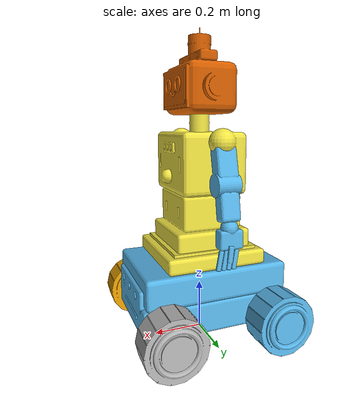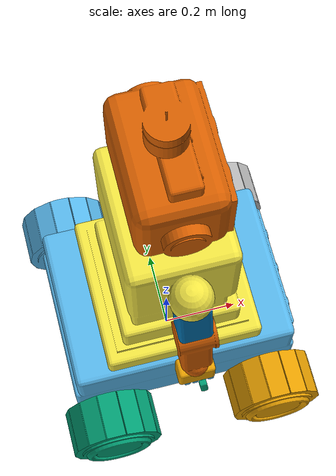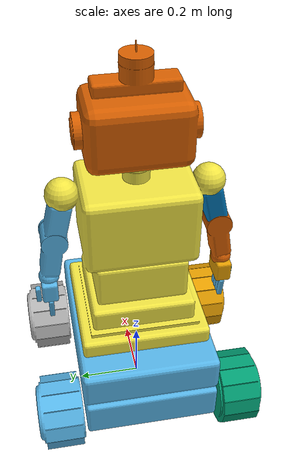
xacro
<?xml version="1.0"?>
<robot name="gracemo_vira" xmlns:xacro="http://www.ros.org/wiki/xacro">

  <!-- Configuration Arguments                                                  -->
  <xacro:arg name="description_pkg" default="gracemo_description" />
  <xacro:property name="pkg" value="$(arg description_pkg)" />
  <xacro:arg name="arm_mode" default="articulated" />
  <xacro:property name="arm_mode" value="$(arg arm_mode)" />

  <!-- Include Sub-files -->
  <xacro:include filename="$(find ${pkg})/urdf/gazebo_plugins.xacro" />
  <xacro:include filename="$(find ${pkg})/urdf/materials.xacro" />

  <!-- Kinematic & Physical Constants (Derived from Blender Master Model)        -->
  <xacro:property name="wheel_radius" value="0.115" />
  <xacro:property name="wheel_width"  value="0.100" />
  <xacro:property name="track_width"  value="0.570" />
  <xacro:property name="wheelbase"    value="0.440" />
  <xacro:property name="half_track"   value="${track_width / 2.0}" />
  <xacro:property name="half_base"    value="${wheelbase / 2.0}" />

  <!-- Deck / Waist Joint Height: Deck is at Z=0.320m world; axle is at Z=0.115m -->
  <xacro:property name="deck_z"       value="0.205" />

  <!-- Neck Joint Height: Neck is at Z=0.905m world; deck is at Z=0.320m -->
  <xacro:property name="neck_z"       value="0.585" />

  <!-- Shoulder Joint Height: Shoulder is at Z=0.805m world; deck is at Z=0.320m -->
  <xacro:property name="shoulder_z"   value="0.485" />
  <xacro:property name="shoulder_y"   value="0.215" />

  <!-- Root Links: base_footprint and base_link                                  -->
  <link name="base_footprint" />

  <joint name="base_footprint_joint" type="fixed">
    <parent link="base_footprint" />
    <child link="base_link" />
    <!-- Axle center is exactly wheel_radius above ground contact -->
    <origin xyz="0 0 ${wheel_radius}" rpy="0 0 0" />
  </joint>

  <link name="base_link">
    <!-- Visual: Master Blender Base Geometry (Lower, Upper, Lightbar, Accents) -->
    <visual>
      <origin xyz="0 0 0" rpy="0 0 0" />
      <geometry>
        <mesh filename="package://${pkg}/meshes/base_link_visual.obj" />
      </geometry>
    </visual>

    <!-- Collision: Clean Box Geometry (80mm ground clearance preserved) -->
    <collision name="chassis_collision">
      <origin xyz="0 0 0.05" rpy="0 0 0" />
      <geometry>
        <box size="0.58 0.40 0.17" />
      </geometry>
    </collision>

    <!-- Inertial: Low Center of Mass for Dynamic Stability -->
    <inertial>
      <origin xyz="0.0 0.0 0.02" rpy="0 0 0" />
      <mass value="22.0" />
      <inertia ixx="0.428" ixy="0.0" ixz="0.0"
               iyy="0.765" iyz="0.0"
               izz="0.985" />
    </inertial>
  </link>

  <!-- Base Sensors & Bumpers (Preserving Frame Hierarchy)                      -->
  <link name="bumper_link">
    <collision>
      <origin xyz="0 0 0" rpy="0 0 0" />
      <geometry><box size="0.02 0.38 0.08" /></geometry>
    </collision>
    <inertial><mass value="0.2" /><inertia ixx="0.001" ixy="0" ixz="0" iyy="0.001" iyz="0" izz="0.001" /></inertial>
  </link>
  <joint name="bumper_joint" type="fixed">
    <parent link="base_link" />
    <child link="bumper_link" />
    <origin xyz="0.30 0 0.04" rpy="0 0 0" />
  </joint>

  <link name="tof_front_left_link" />
  <joint name="tof_front_left_joint" type="fixed">
    <parent link="base_link" />
    <child link="tof_front_left_link" />
    <origin xyz="0.29 0.15 0.04" rpy="0 0 0.26" />
  </joint>

  <link name="tof_front_right_link" />
  <joint name="tof_front_right_joint" type="fixed">
    <parent link="base_link" />
    <child link="tof_front_right_link" />
    <origin xyz="0.29 -0.15 0.04" rpy="0 0 -0.26" />
  </joint>

  <link name="tof_rear_link" />
  <joint name="tof_rear_joint" type="fixed">
    <parent link="base_link" />
    <child link="tof_rear_link" />
    <origin xyz="-0.29 0 0.04" rpy="0 0 3.14159" />
  </joint>

  <link name="imu_link" />
  <joint name="imu_joint" type="fixed">
    <parent link="base_link" />
    <child link="imu_link" />
    <origin xyz="0 0 0.05" rpy="0 0 0" />
  </joint>

  <!-- 4-Wheel Drive Assembly Macro                                             -->
  <xacro:macro name="wheel_unit" params="prefix x_sign y_sign mesh_file">
    <link name="${prefix}_wheel_link">
      <!-- Visual: Tire + Accent Ring + Hub Mesh -->
      <visual>
        <origin xyz="0 0 0" rpy="0 0 0" />
        <geometry>
          <mesh filename="package://${pkg}/meshes/${mesh_file}" />
        </geometry>
      </visual>

      <!-- Collision: High-fidelity cylindrical contact -->
      <collision name="${prefix}_wheel_collision">
        <origin xyz="0 0 0" rpy="1.5707963 0 0" />
        <geometry>
          <cylinder radius="${wheel_radius}" length="${wheel_width}" />
        </geometry>
      </collision>

      <!-- Inertial Properties (Cylinder spinning on Y) -->
      <inertial>
        <origin xyz="0 0 0" rpy="0 0 0" />
        <mass value="1.8" />
        <inertia ixx="0.00745" ixy="0" ixz="0"
                 iyy="0.01190" iyz="0"
                 izz="0.00745" />
      </inertial>
    </link>

    <joint name="${prefix}_wheel_joint" type="continuous">
      <parent link="base_link" />
      <child link="${prefix}_wheel_link" />
      <origin xyz="${x_sign * half_base} ${y_sign * half_track} 0.0" rpy="0 0 0" />
      <axis xyz="0 1 0" />
      <dynamics damping="0.1" friction="0.02" />
    </joint>
  </xacro:macro>

  <xacro:wheel_unit prefix="front_left"  x_sign="1"  y_sign="1"  mesh_file="wheel_front_left_visual.obj" />
  <xacro:wheel_unit prefix="front_right" x_sign="1"  y_sign="-1" mesh_file="wheel_front_right_visual.obj" />
  <xacro:wheel_unit prefix="rear_left"   x_sign="-1" y_sign="1"  mesh_file="wheel_rear_left_visual.obj" />
  <xacro:wheel_unit prefix="rear_right"  x_sign="-1" y_sign="-1" mesh_file="wheel_rear_right_visual.obj" />

  <!-- Torso & Articulated Waist Joint                                          -->
  <joint name="waist_pitch_joint" type="revolute">
    <parent link="base_link" />
    <child link="torso_link" />
    <origin xyz="0 0 ${deck_z}" rpy="0 0 0" />
    <axis xyz="0 1 0" />
    <limit lower="-0.5236" upper="0.5236" effort="100.0" velocity="2.0" />
    <dynamics damping="1.5" friction="0.2" />
  </joint>

  <link name="torso_link">
    <!-- Visual: Platform, Pedestal, Waist, Chest, Accents, Sensors -->
    <visual>
      <origin xyz="0 0 0" rpy="0 0 0" />
      <geometry>
        <mesh filename="package://${pkg}/meshes/torso_link_visual.obj" />
      </geometry>
    </visual>

    <!-- Collision: Upper Body Protective Hull -->
    <collision name="torso_collision">
      <origin xyz="0 0 0.24" rpy="0 0 0" />
      <geometry>
        <box size="0.32 0.36 0.44" />
      </geometry>
    </collision>

    <!-- Inertial: Compute units, batteries, upper deck structure -->
    <inertial>
      <origin xyz="0.0 0.0 0.20" rpy="0 0 0" />
      <mass value="7.0" />
      <inertia ixx="0.180" ixy="0.0" ixz="0.0"
               iyy="0.180" iyz="0.0"
               izz="0.120" />
    </inertial>
  </link>

  <!-- Head & 2-DOF Active Neck Pan / Tilt Assembly                            -->
  <joint name="neck_pan_joint" type="revolute">
    <parent link="torso_link" />
    <child link="neck_pan_link" />
    <origin xyz="0 0 ${neck_z}" rpy="0 0 0" />
    <axis xyz="0 0 1" />
    <limit lower="-1.5708" upper="1.5708" effort="15.0" velocity="3.0" />
    <dynamics damping="0.2" friction="0.05" />
  </joint>

  <link name="neck_pan_link">
    <inertial>
      <origin xyz="0 0 0" rpy="0 0 0" />
      <mass value="0.2" />
      <inertia ixx="0.0005" ixy="0" ixz="0" iyy="0.0005" iyz="0" izz="0.0005" />
    </inertial>
  </link>

  <joint name="neck_tilt_joint" type="revolute">
    <parent link="neck_pan_link" />
    <child link="head_link" />
    <origin xyz="0 0 0" rpy="0 0 0" />
    <axis xyz="0 1 0" />
    <limit lower="-0.5236" upper="0.7854" effort="15.0" velocity="3.0" />
    <dynamics damping="0.2" friction="0.05" />
  </joint>

  <link name="head_link">
    <!-- Visual: Head Shell, Bezel, OLED Face Screen, Glowing Eyes, Lidar, Ears -->
    <visual>
      <origin xyz="0 0 0" rpy="0 0 0" />
      <geometry>
        <mesh filename="package://${pkg}/meshes/head_link_visual.obj" />
      </geometry>
    </visual>

    <!-- Collision: Spherical Head Enclosure -->
    <collision name="head_collision">
      <origin xyz="0 0 0.10" rpy="0 0 0" />
      <geometry>
        <sphere radius="0.13" />
      </geometry>
    </collision>

    <inertial>
      <origin xyz="0 0 0.10" rpy="0 0 0" />
      <mass value="1.5" />
      <inertia ixx="0.012" ixy="0" ixz="0"
               iyy="0.012" iyz="0"
               izz="0.010" />
    </inertial>
  </link>

  <!-- Perception Sensors: Planar LiDAR and RGB-D Stereo Camera                -->
  <!-- LiDAR: Mounted at the top crown (HEAD_LIDAR in Blender, Z=1.175m) -->
  <link name="lidar_link">
    <inertial>
      <mass value="0.10" />
      <inertia ixx="0.0001" ixy="0" ixz="0" iyy="0.0001" iyz="0" izz="0.0001" />
    </inertial>
  </link>

  <joint name="lidar_joint" type="fixed">
    <parent link="head_link" />
    <child link="lidar_link" />
    <origin xyz="0.0 0.0 0.270" rpy="0 0 0" />
  </joint>

  <!-- Camera: Mounted at front sensor bar on the face (Z=1.02m, X=0.112m) -->
  <link name="camera_link">
    <inertial>
      <mass value="0.08" />
      <inertia ixx="0.0001" ixy="0" ixz="0" iyy="0.0001" iyz="0" izz="0.0001" />
    </inertial>
  </link>

  <joint name="camera_joint" type="fixed">
    <parent link="head_link" />
    <child link="camera_link" />
    <origin xyz="0.112 0.0 0.115" rpy="0 0 0" />
  </joint>

  <!-- Camera Optical Frame (ROS Standard: Z forward, X right, Y down) -->
  <link name="camera_optical_link" />

  <joint name="camera_optical_joint" type="fixed">
    <parent link="camera_link" />
    <child link="camera_optical_link" />
    <origin xyz="0 0 0" rpy="-1.5707963 0 -1.5707963" />
  </joint>

  <!-- Left Arm Pod (Natural Posture / Tucked Pod)                             -->
  <link name="left_arm_link">
    <visual>
      <origin xyz="0 0 0" rpy="0 0 0" />
      <geometry>
        <mesh filename="package://${pkg}/meshes/left_arm_visual.obj" />
      </geometry>
    </visual>
    <collision name="left_arm_collision">
      <origin xyz="0.03 0.04 -0.16" rpy="0 0 0" />
      <geometry><box size="0.10 0.09 0.36" /></geometry>
    </collision>
    <inertial>
      <origin xyz="0.03 0.04 -0.16" rpy="0 0 0" />
      <mass value="1.0" />
      <inertia ixx="0.01" ixy="0" ixz="0" iyy="0.01" iyz="0" izz="0.005" />
    </inertial>
  </link>

  <joint name="left_arm_joint" type="fixed">
    <parent link="torso_link" />
    <child link="left_arm_link" />
    <origin xyz="0.0 ${shoulder_y} ${shoulder_z}" rpy="0 0 0" />
  </joint>

  <!-- Right Arm: Articulated 7-DOF Manipulator & Hand Gripper                 -->
  <!-- Joint 1: Shoulder Yaw (Z) -->
  <link name="right_shoulder_yaw_link">
    <visual>
      <origin xyz="0 0 0" rpy="0 0 0" />
      <geometry><sphere radius="0.040" /></geometry>
      <material name="dark_grey" />
    </visual>
    <collision>
      <origin xyz="0 0 0" rpy="0 0 0" />
      <geometry><sphere radius="0.038" /></geometry>
    </collision>
    <inertial><mass value="0.2" /><inertia ixx="0.0002" ixy="0" ixz="0" iyy="0.0002" iyz="0" izz="0.0002" /></inertial>
  </link>

  <joint name="right_shoulder_yaw_joint" type="revolute">
    <parent link="torso_link" />
    <child link="right_shoulder_yaw_link" />
    <origin xyz="0.0 ${-shoulder_y} ${shoulder_z}" rpy="0 0 0" />
    <axis xyz="0 0 1" />
    <limit lower="-1.5708" upper="1.5708" effort="50.0" velocity="3.0" />
    <dynamics damping="1.5" friction="0.05" />
  </joint>

  <!-- Joint 2: Shoulder Pitch (Y) -->
  <link name="right_shoulder_pitch_link">
    <visual>
      <origin xyz="0 0 0" rpy="0 0 0" />
      <geometry><sphere radius="0.038" /></geometry>
      <material name="accent_orange" />
    </visual>
    <collision>
      <origin xyz="0 0 0" rpy="0 0 0" />
      <geometry><sphere radius="0.036" /></geometry>
    </collision>
    <inertial><mass value="0.2" /><inertia ixx="0.0002" ixy="0" ixz="0" iyy="0.0002" iyz="0" izz="0.0002" /></inertial>
  </link>

  <joint name="right_shoulder_pitch_joint" type="revolute">
    <parent link="right_shoulder_yaw_link" />
    <child link="right_shoulder_pitch_link" />
    <origin xyz="0 0 0" rpy="0 0 0" />
    <axis xyz="0 1 0" />
    <limit lower="-1.5708" upper="2.0944" effort="50.0" velocity="3.0" />
    <dynamics damping="1.5" friction="0.05" />
  </joint>

  <!-- Joint 3: Shoulder Roll (X) / Upper Arm Link -->
  <link name="right_upper_arm_link">
    <visual>
      <origin xyz="0 0 0" rpy="0 0 0" />
      <geometry>
        <mesh filename="package://${pkg}/meshes/right_upper_arm_visual.obj" />
      </geometry>
    </visual>
    <collision>
      <origin xyz="0 0 -0.075" rpy="0 0 0" />
      <geometry><cylinder radius="0.035" length="0.15" /></geometry>
    </collision>
    <inertial><mass value="0.5" /><inertia ixx="0.001" ixy="0" ixz="0" iyy="0.001" iyz="0" izz="0.0005" /></inertial>
  </link>

  <joint name="right_shoulder_roll_joint" type="revolute">
    <parent link="right_shoulder_pitch_link" />
    <child link="right_upper_arm_link" />
    <origin xyz="0 0 0" rpy="0 0 0" />
    <axis xyz="1 0 0" />
    <limit lower="-1.5708" upper="1.5708" effort="40.0" velocity="3.0" />
    <dynamics damping="1.0" friction="0.05" />
  </joint>

  <!-- Joint 4: Elbow Pitch (Y) / Forearm Link -->
  <link name="right_forearm_link">
    <visual>
      <origin xyz="0 0 0" rpy="0 0 0" />
      <geometry>
        <mesh filename="package://${pkg}/meshes/right_forearm_visual.obj" />
      </geometry>
    </visual>
    <collision>
      <origin xyz="0 -0.02 -0.075" rpy="0 0 0" />
      <geometry><cylinder radius="0.030" length="0.15" /></geometry>
    </collision>
    <inertial><mass value="0.4" /><inertia ixx="0.0008" ixy="0" ixz="0" iyy="0.0008" iyz="0" izz="0.0003" /></inertial>
  </link>

  <joint name="right_elbow_pitch_joint" type="revolute">
    <parent link="right_upper_arm_link" />
    <child link="right_forearm_link" />
    <origin xyz="0.0 -0.035 -0.150" rpy="0 0 0" />
    <axis xyz="0 1 0" />
    <limit lower="-2.0944" upper="0.0" effort="30.0" velocity="3.0" />
    <dynamics damping="1.0" friction="0.05" />
  </joint>

  <!-- Joint 5: Wrist Pitch (Y) -->
  <link name="right_wrist_pitch_link">
    <visual>
      <origin xyz="0 0 0" rpy="0 0 0" />
      <geometry><sphere radius="0.025" /></geometry>
      <material name="accent_orange" />
    </visual>
    <collision>
      <origin xyz="0 0 0" rpy="0 0 0" />
      <geometry><sphere radius="0.024" /></geometry>
    </collision>
    <inertial><mass value="0.1" /><inertia ixx="0.0001" ixy="0" ixz="0" iyy="0.0001" iyz="0" izz="0.0001" /></inertial>
  </link>

  <joint name="right_wrist_pitch_joint" type="revolute">
    <parent link="right_forearm_link" />
    <child link="right_wrist_pitch_link" />
    <origin xyz="0.0 -0.026 -0.150" rpy="0 0 0" />
    <axis xyz="0 1 0" />
    <limit lower="-1.5708" upper="1.5708" effort="15.0" velocity="4.0" />
    <dynamics damping="0.5" friction="0.02" />
  </joint>

  <!-- Joint 6: Wrist Yaw (Z) -->
  <link name="right_wrist_yaw_link">
    <visual>
      <origin xyz="0 0 0" rpy="0 0 0" />
      <geometry><cylinder radius="0.020" length="0.015" /></geometry>
      <material name="dark_grey" />
    </visual>
    <collision>
      <origin xyz="0 0 0" rpy="0 0 0" />
      <geometry><cylinder radius="0.020" length="0.015" /></geometry>
    </collision>
    <inertial><mass value="0.08" /><inertia ixx="0.00005" ixy="0" ixz="0" iyy="0.00005" iyz="0" izz="0.00005" /></inertial>
  </link>

  <joint name="right_wrist_yaw_joint" type="revolute">
    <parent link="right_wrist_pitch_link" />
    <child link="right_wrist_yaw_link" />
    <origin xyz="0 0 0" rpy="0 0 0" />
    <axis xyz="0 0 1" />
    <limit lower="-1.5708" upper="1.5708" effort="15.0" velocity="4.0" />
    <dynamics damping="0.5" friction="0.02" />
  </joint>

  <!-- Joint 7: Wrist Roll (X) / Palm Link -->
  <link name="right_palm_link">
    <visual>
      <origin xyz="0 0 0" rpy="0 0 0" />
      <geometry>
        <mesh filename="package://${pkg}/meshes/right_palm_visual.obj" />
      </geometry>
    </visual>
    <collision>
      <origin xyz="0 0 -0.03" rpy="0 0 0" />
      <geometry><box size="0.05 0.06 0.06" /></geometry>
    </collision>
    <inertial><mass value="0.15" /><inertia ixx="0.0002" ixy="0" ixz="0" iyy="0.0002" iyz="0" izz="0.0002" /></inertial>
  </link>

  <joint name="right_wrist_roll_joint" type="revolute">
    <parent link="right_wrist_yaw_link" />
    <child link="right_palm_link" />
    <origin xyz="0 0 0" rpy="0 0 0" />
    <axis xyz="1 0 0" />
    <limit lower="-3.1415" upper="3.1415" effort="10.0" velocity="4.0" />
    <dynamics damping="0.3" friction="0.02" />
  </joint>

  <!-- Gripper Fingers -->
  <link name="finger_left_link">
    <visual>
      <origin xyz="0 0 0" rpy="0 0 0" />
      <geometry>
        <mesh filename="package://${pkg}/meshes/right_finger_visual.obj" />
      </geometry>
    </visual>
    <collision>
      <origin xyz="0 0 -0.02" rpy="0 0 0" />
      <geometry><box size="0.02 0.05 0.04" /></geometry>
    </collision>
    <inertial><mass value="0.05" /><inertia ixx="0.00002" ixy="0" ixz="0" iyy="0.00002" iyz="0" izz="0.00002" /></inertial>
  </link>

  <joint name="finger_left_joint" type="prismatic">
    <parent link="right_palm_link" />
    <child link="finger_left_link" />
    <origin xyz="0.0 -0.002 -0.080" rpy="0 0 0" />
    <axis xyz="0 1 0" />
    <limit lower="0.0" upper="0.035" effort="20.0" velocity="0.1" />
    <dynamics damping="1.0" friction="0.05" />
  </joint>

  <link name="finger_right_link">
    <visual>
      <origin xyz="0 0 0" rpy="0 0 0" />
      <geometry>
        <mesh filename="package://${pkg}/meshes/right_thumb_visual.obj" />
      </geometry>
    </visual>
    <collision>
      <origin xyz="0 0 -0.02" rpy="0 0 0" />
      <geometry><box size="0.02 0.02 0.04" /></geometry>
    </collision>
    <inertial><mass value="0.03" /><inertia ixx="0.00001" ixy="0" ixz="0" iyy="0.00001" iyz="0" izz="0.00001" /></inertial>
  </link>

  <joint name="finger_right_joint" type="prismatic">
    <parent link="right_palm_link" />
    <child link="finger_right_link" />
    <origin xyz="0.0 -0.037 -0.055" rpy="0 0 0" />
    <axis xyz="0 -1 0" />
    <limit lower="0.0" upper="0.035" effort="20.0" velocity="0.1" />
    <dynamics damping="1.0" friction="0.05" />
  </joint>

</robot>

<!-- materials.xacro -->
<robot xmlns:xacro="http://www.ros.org/wiki/xacro">

  <material name="chassis_blue">
    <color rgba="0.10 0.40 0.85 1.0"/>
  </material>

  <material name="dark_grey">
    <color rgba="0.20 0.20 0.20 1.0"/>
  </material>

  <material name="rubber_black">
    <color rgba="0.05 0.05 0.05 1.0"/>
  </material>

  <material name="metallic_silver">
    <color rgba="0.75 0.75 0.80 1.0"/>
  </material>

  <material name="camera_lens_black">
    <color rgba="0.0 0.0 0.0 1.0"/>
  </material>

  <material name="lidar_orange">
    <color rgba="0.95 0.45 0.05 1.0"/>
  </material>

  <material name="cyan_glow">
    <color rgba="0.0 0.83 1.0 1.0"/>
  </material>

  <material name="matte_dark_titanium">
    <color rgba="0.12 0.14 0.17 1.0"/>
  </material>

  <material name="safety_orange">
    <color rgba="1.0 0.4745 0.0 1.0"/>
  </material>

  <material name="accent_orange">
    <color rgba="1.0 0.4745 0.0 1.0"/>
  </material>

  <material name="pure_white">
    <color rgba="0.96 0.96 0.96 1.0"/>
  </material>

</robot>
